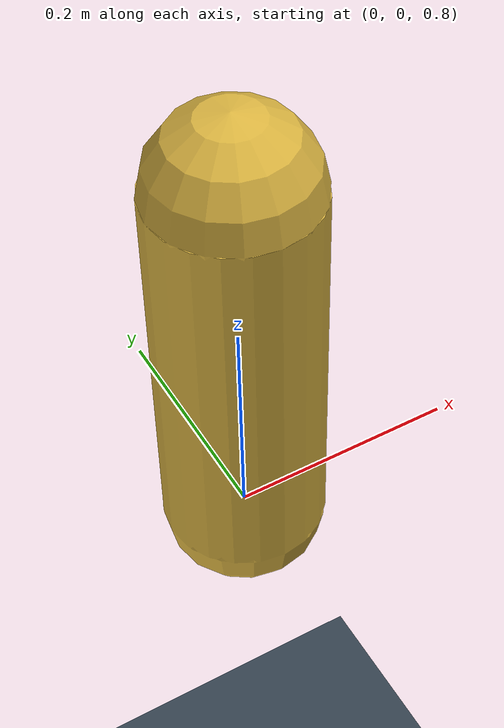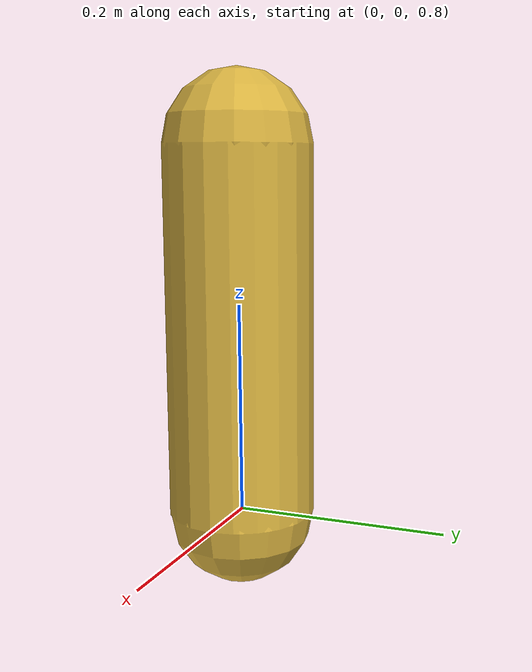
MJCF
<mujoco model="mini-humanoid">
  <visual>
    <global azimuth="120" elevation="-20"/>
  </visual>
  <worldbody>
    <light pos="0 0 3"/>
    <geom type="plane" size="2 2 0.05" rgba="0.2 0.25 0.3 1"/>
    <body name="pelvis" pos="0 0 0.8">
      <geom type="capsule" fromto="0 0 0 0 0 0.35" size="0.07" rgba="0.85 0.7 0.25 1"/>
    </body>
  </worldbody>
</mujoco>
